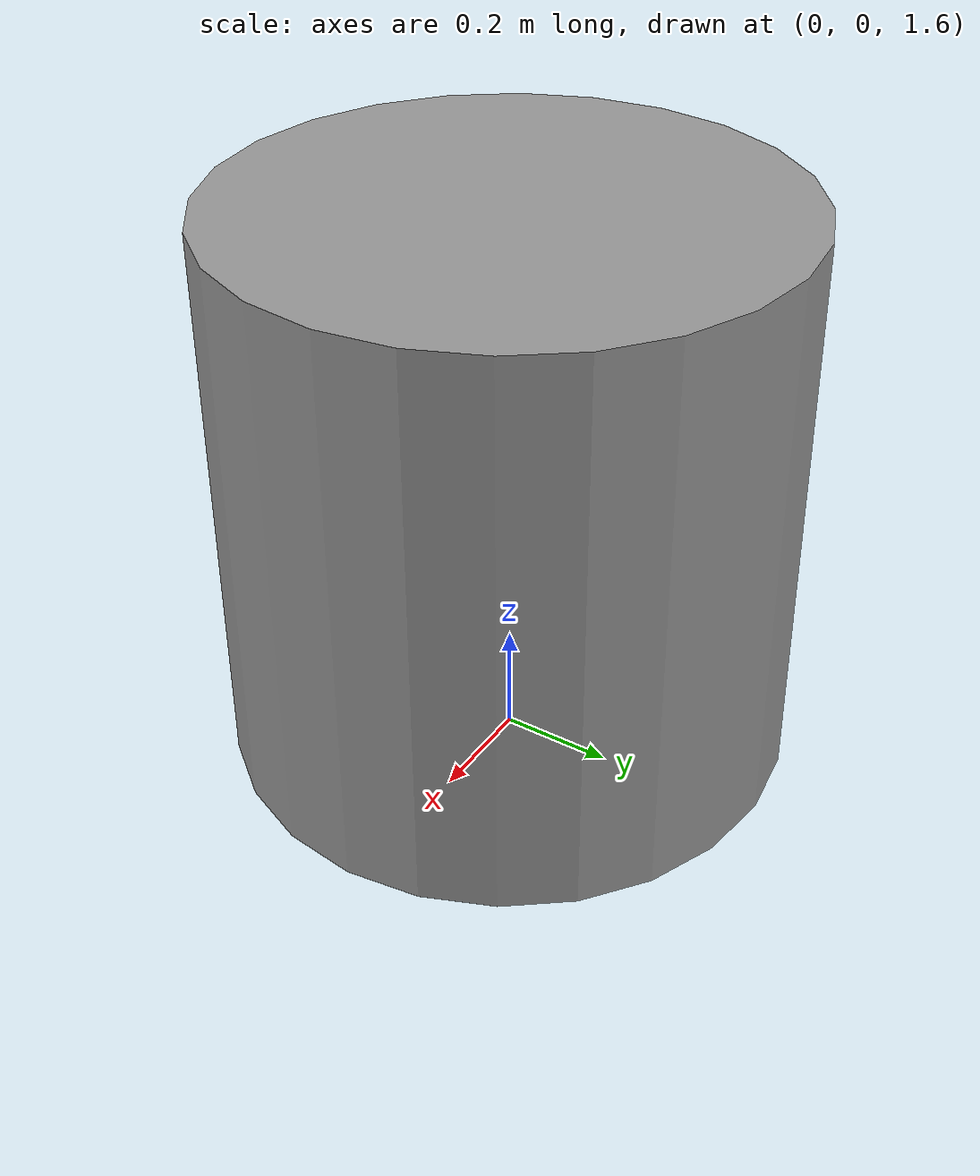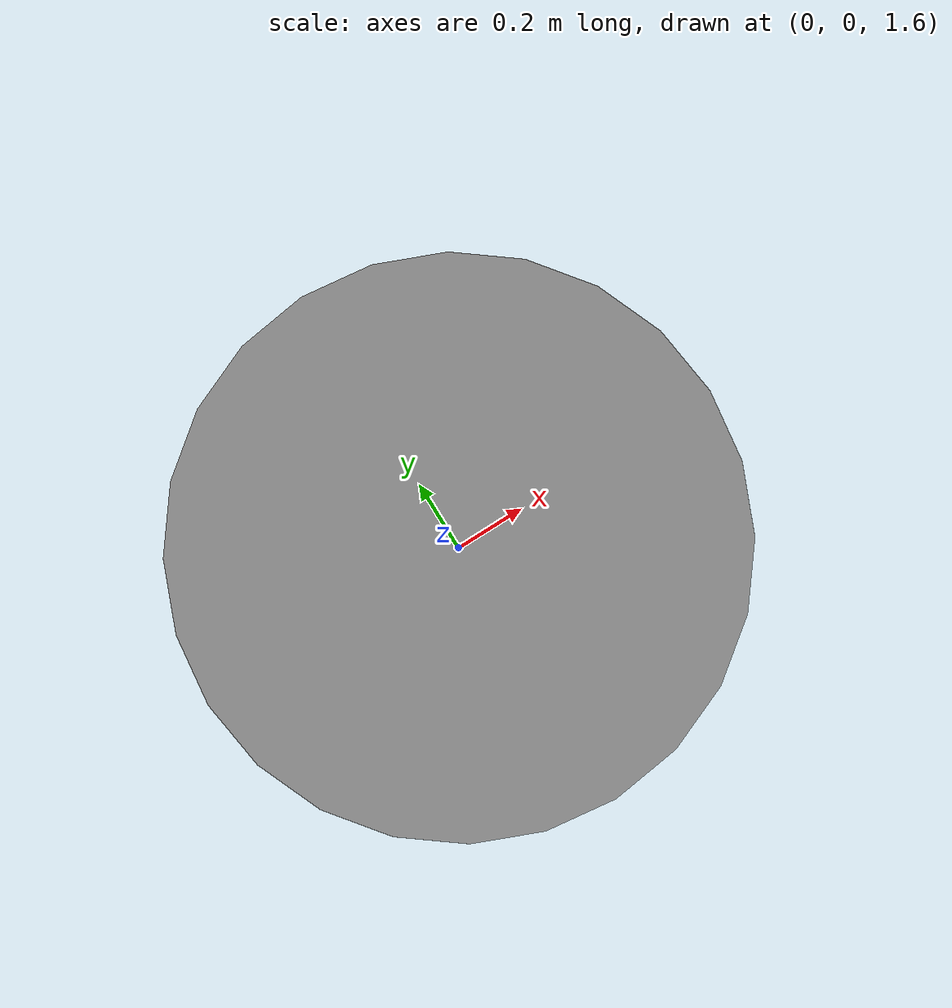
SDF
<?xml version='1.0'?>
<sdf version='1.6'>
  <model name='cylinder2'>
    <link name='pared1'>
      <pose frame=''>0 0 2.133 0 0 0</pose>
      <inertial>
        <mass>10000</mass>
        <inertia>
          <ixx>99999999999</ixx>
          <ixy>0</ixy>
          <ixz>0</ixz>
          <iyy>99999999999</iyy>
          <iyz>0</iyz>
          <izz>99999999999</izz>
        </inertia>
        <pose frame=''>0 0 0 0 -0 0</pose>
      </inertial>
      <self_collide>0</self_collide>
      <kinematic>0</kinematic>
      <gravity>1</gravity>
      <visual name='visual'>
        <geometry>
          <cylinder>
              <radius>0.5</radius>
              <length>1</length>
          </cylinder>
        </geometry>
        <material>
          <script>
            <name>Gazebo/Grey</name>
            <uri>file://media/materials/scripts/gazebo.material</uri>
          </script>
          <!-- Yellow -->
          <ambient>0.698039 0.698039 0.698039 1</ambient>
          <diffuse>0.698039 0.698039 0.698039 1</diffuse>
          <specular>0.898039 0.898039 0.898039 1 20</specular>
          <emissive>1 1 0 1</emissive>
          <shader type='vertex'>
            <normal_map>__default__</normal_map>
          </shader>
        </material>
        <pose frame=''>0 0 0 0 -0 0</pose>
        <transparency>0</transparency>
        <cast_shadows>1</cast_shadows>
      </visual>
      <collision name='collision'>
        <laser_retro>0</laser_retro>
        <max_contacts>10</max_contacts>
        <pose frame=''>0 0 0 0 -0 0</pose>
        <geometry>
          <cylinder>
              <radius>0.5</radius>
              <length>1</length>
            </cylinder>
        </geometry>
        <surface>
          <friction>
            <ode>
              <mu>100</mu>
              <mu2>100</mu2>
              <fdir1>0 0 0</fdir1>
              <slip1>0</slip1>
              <slip2>0</slip2>
            </ode>
            <torsional>
              <coefficient>1</coefficient>
              <patch_radius>0</patch_radius>
              <surface_radius>0</surface_radius>
              <use_patch_radius>1</use_patch_radius>
              <ode>
                <slip>0</slip>
              </ode>
            </torsional>
          </friction>
          <bounce>
            <restitution_coefficient>0</restitution_coefficient>
            <threshold>1e+06</threshold>
          </bounce>
          <contact>
            <collide_without_contact>0</collide_without_contact>
            <collide_without_contact_bitmask>1</collide_without_contact_bitmask>
            <collide_bitmask>1</collide_bitmask>
            <ode>
              <soft_cfm>0</soft_cfm>
              <soft_erp>0.2</soft_erp>
              <kp>1e+13</kp>
              <kd>1</kd>
              <max_vel>0.01</max_vel>
              <min_depth>0</min_depth>
            </ode>
            <bullet>
              <split_impulse>1</split_impulse>
              <split_impulse_penetration_threshold>-0.01</split_impulse_penetration_threshold>
              <soft_cfm>0</soft_cfm>
              <soft_erp>0.2</soft_erp>
              <kp>1e+13</kp>
              <kd>1</kd>
            </bullet>
          </contact>
        </surface>
      </collision>
    </link>
    <static>0</static>
    <allow_auto_disable>1</allow_auto_disable>
    <plugin name="cylinder2plugin" filename="libwall4plugin.so"/>
  </model>
</sdf>
